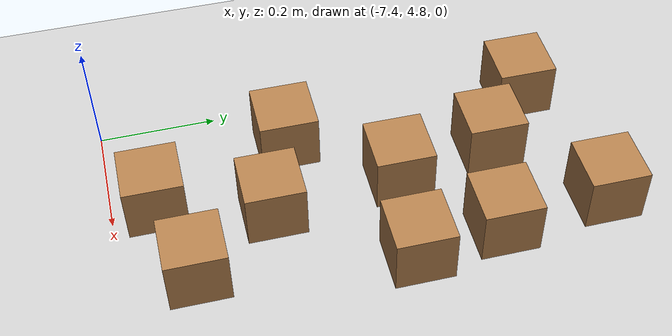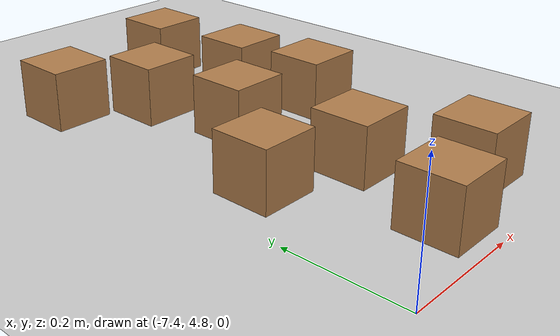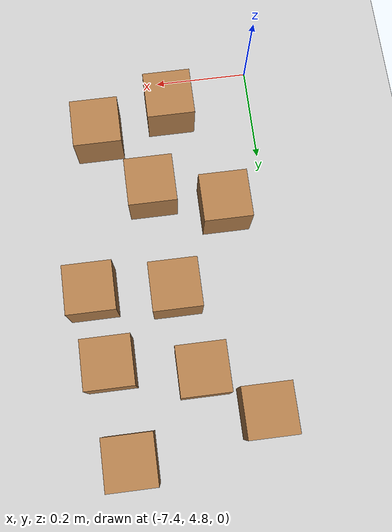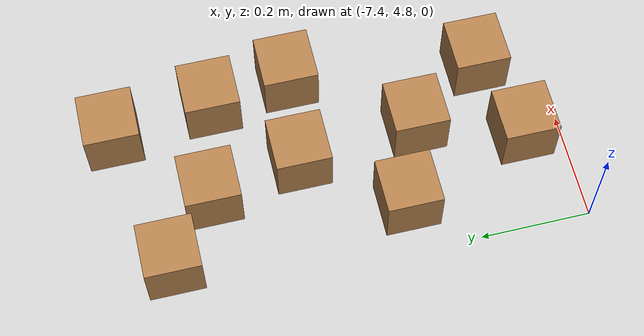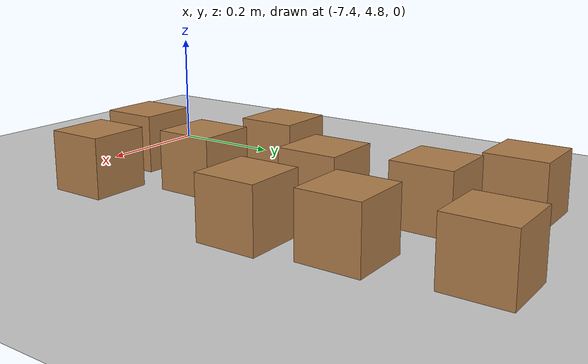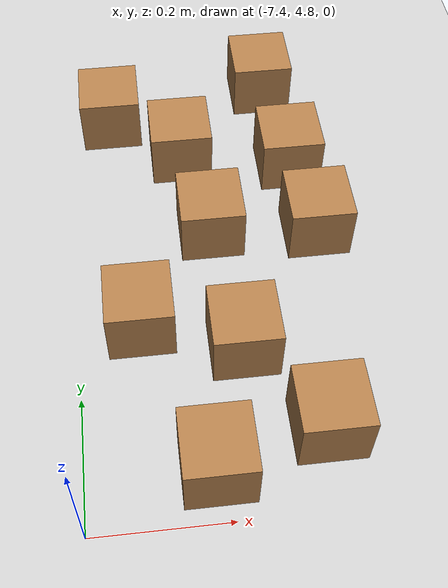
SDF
<sdf version="1.7">
 <world name="default">
  <model name="ground_plane">
   <static>1</static>
   <link name="link">
    <collision name="collision">
     <geometry><plane><normal>0 0 1</normal><size>100 100</size></plane></geometry>
     <surface>
      <contact><collide_bitmask>65535</collide_bitmask></contact>
      <friction><ode><mu>1.0</mu><mu2>1.0</mu2></ode></friction>
     </surface>
    </collision>
    <visual name="visual">
     <cast_shadows>0</cast_shadows>
     <geometry><plane><normal>0 0 1</normal><size>100 100</size></plane></geometry>
     <material>
      <script><uri>file://media/materials/scripts/gazebo.material</uri><name>Gazebo/Grey</name></script>
     </material>
    </visual>
   </link>
  </model>
  <model name="wood_cube_10cm_clone_2_clone_0">
   <link name="link">
    <pose>0 0 0.05 0 -0 0</pose>
    <inertial>
     <mass>0.5167</mass>
     <inertia>
      <ixx>0.000861167</ixx>
      <ixy>0</ixy>
      <ixz>0</ixz>
      <iyy>0.000861167</iyy>
      <iyz>0</iyz>
      <izz>0.000861167</izz>
     </inertia>
    </inertial>
    <collision name="collision">
     <geometry><box><size>0.1 0.1 0.1</size></box></geometry>
     <surface>
      <contact>
       <poissons_ratio>0.347</poissons_ratio>
       <elastic_modulus>8.8e+09</elastic_modulus>
       <ode><kp>100000</kp><kd>100</kd><max_vel>100</max_vel><min_depth>0.001</min_depth></ode>
      </contact>
      <friction>
       <torsional>
        <coefficient>1</coefficient>
        <use_patch_radius>0</use_patch_radius>
        <surface_radius>0.01</surface_radius>
       </torsional>
      </friction>
     </surface>
    </collision>
    <visual name="visual">
     <geometry><box><size>0.1 0.1 0.1</size></box></geometry>
     <material>
      <script><uri>file://media/materials/scripts/gazebo.material</uri><name>Gazebo/Wood</name></script>
     </material>
    </visual>
   </link>
   <pose>-7.059 4.91918 -0.001013 0 -0 0</pose>
  </model>
  <model name="wood_cube_10cm_clone_2_clone_4">
   <link name="link">
    <pose>0 0 0.05 0 -0 0</pose>
    <inertial>
     <mass>0.5167</mass>
     <inertia>
      <ixx>0.000861167</ixx>
      <ixy>0</ixy>
      <ixz>0</ixz>
      <iyy>0.000861167</iyy>
      <iyz>0</iyz>
      <izz>0.000861167</izz>
     </inertia>
    </inertial>
    <collision name="collision">
     <geometry><box><size>0.1 0.1 0.1</size></box></geometry>
     <surface>
      <contact>
       <poissons_ratio>0.347</poissons_ratio>
       <elastic_modulus>8.8e+09</elastic_modulus>
       <ode><kp>100000</kp><kd>100</kd><max_vel>100</max_vel><min_depth>0.001</min_depth></ode>
      </contact>
      <friction>
       <torsional>
        <coefficient>1</coefficient>
        <use_patch_radius>0</use_patch_radius>
        <surface_radius>0.01</surface_radius>
       </torsional>
      </friction>
     </surface>
    </collision>
    <visual name="visual">
     <geometry><box><size>0.1 0.1 0.1</size></box></geometry>
     <material>
      <script><uri>file://media/materials/scripts/gazebo.material</uri><name>Gazebo/Wood</name></script>
     </material>
    </visual>
   </link>
   <pose>-7.01286 5.26888 -0.001013 0 -0 0</pose>
  </model>
  <model name="wood_cube_10cm_clone_2_clone_5">
   <link name="link">
    <pose>0 0 0.05 0 -0 0</pose>
    <inertial>
     <mass>0.5167</mass>
     <inertia>
      <ixx>0.000861167</ixx>
      <ixy>0</ixy>
      <ixz>0</ixz>
      <iyy>0.000861167</iyy>
      <iyz>0</iyz>
      <izz>0.000861167</izz>
     </inertia>
    </inertial>
    <collision name="collision">
     <geometry><box><size>0.1 0.1 0.1</size></box></geometry>
     <surface>
      <contact>
       <poissons_ratio>0.347</poissons_ratio>
       <elastic_modulus>8.8e+09</elastic_modulus>
       <ode><kp>100000</kp><kd>100</kd><max_vel>100</max_vel><min_depth>0.001</min_depth></ode>
      </contact>
      <friction>
       <torsional>
        <coefficient>1</coefficient>
        <use_patch_radius>0</use_patch_radius>
        <surface_radius>0.01</surface_radius>
       </torsional>
      </friction>
     </surface>
    </collision>
    <visual name="visual">
     <geometry><box><size>0.1 0.1 0.1</size></box></geometry>
     <material>
      <script><uri>file://media/materials/scripts/gazebo.material</uri><name>Gazebo/Wood</name></script>
     </material>
    </visual>
   </link>
   <pose>-7.15845 5.06112 -0.001013 0 -0 0</pose>
  </model>
  <model name="wood_cube_10cm_clone_2_clone_6">
   <link name="link">
    <pose>0 0 0.05 0 -0 0</pose>
    <inertial>
     <mass>0.5167</mass>
     <inertia>
      <ixx>0.000861167</ixx>
      <ixy>0</ixy>
      <ixz>0</ixz>
      <iyy>0.000861167</iyy>
      <iyz>0</iyz>
      <izz>0.000861167</izz>
     </inertia>
    </inertial>
    <collision name="collision">
     <geometry><box><size>0.1 0.1 0.1</size></box></geometry>
     <surface>
      <contact>
       <poissons_ratio>0.347</poissons_ratio>
       <elastic_modulus>8.8e+09</elastic_modulus>
       <ode><kp>100000</kp><kd>100</kd><max_vel>100</max_vel><min_depth>0.001</min_depth></ode>
      </contact>
      <friction>
       <torsional>
        <coefficient>1</coefficient>
        <use_patch_radius>0</use_patch_radius>
        <surface_radius>0.01</surface_radius>
       </torsional>
      </friction>
     </surface>
    </collision>
    <visual name="visual">
     <geometry><box><size>0.1 0.1 0.1</size></box></geometry>
     <material>
      <script><uri>file://media/materials/scripts/gazebo.material</uri><name>Gazebo/Wood</name></script>
     </material>
    </visual>
   </link>
   <pose>-7.21871 4.87418 -0.001013 0 -0 0</pose>
  </model>
  <model name="wood_cube_10cm_clone_2_clone_8">
   <link name="link">
    <pose>0 0 0.05 0 -0 0</pose>
    <inertial>
     <mass>0.5167</mass>
     <inertia>
      <ixx>0.000861167</ixx>
      <ixy>0</ixy>
      <ixz>0</ixz>
      <iyy>0.000861167</iyy>
      <iyz>0</iyz>
      <izz>0.000861167</izz>
     </inertia>
    </inertial>
    <collision name="collision">
     <geometry><box><size>0.1 0.1 0.1</size></box></geometry>
     <surface>
      <contact>
       <poissons_ratio>0.347</poissons_ratio>
       <elastic_modulus>8.8e+09</elastic_modulus>
       <ode><kp>100000</kp><kd>100</kd><max_vel>100</max_vel><min_depth>0.001</min_depth></ode>
      </contact>
      <friction>
       <torsional>
        <coefficient>1</coefficient>
        <use_patch_radius>0</use_patch_radius>
        <surface_radius>0.01</surface_radius>
       </torsional>
      </friction>
     </surface>
    </collision>
    <visual name="visual">
     <geometry><box><size>0.1 0.1 0.1</size></box></geometry>
     <material>
      <script><uri>file://media/materials/scripts/gazebo.material</uri><name>Gazebo/Wood</name></script>
     </material>
    </visual>
   </link>
   <pose>-7.30695 5.11348 -0.001013 0 -0 0</pose>
  </model>
  <model name="wood_cube_10cm_clone_2_clone_9">
   <link name="link">
    <pose>0 0 0.05 0 -0 0</pose>
    <inertial>
     <mass>0.5167</mass>
     <inertia>
      <ixx>0.000861167</ixx>
      <ixy>0</ixy>
      <ixz>0</ixz>
      <iyy>0.000861167</iyy>
      <iyz>0</iyz>
      <izz>0.000861167</izz>
     </inertia>
    </inertial>
    <collision name="collision">
     <geometry><box><size>0.1 0.1 0.1</size></box></geometry>
     <surface>
      <contact>
       <poissons_ratio>0.347</poissons_ratio>
       <elastic_modulus>8.8e+09</elastic_modulus>
       <ode><kp>100000</kp><kd>100</kd><max_vel>100</max_vel><min_depth>0.001</min_depth></ode>
      </contact>
      <friction>
       <torsional>
        <coefficient>1</coefficient>
        <use_patch_radius>0</use_patch_radius>
        <surface_radius>0.01</surface_radius>
       </torsional>
      </friction>
     </surface>
    </collision>
    <visual name="visual">
     <geometry><box><size>0.1 0.1 0.1</size></box></geometry>
     <material>
      <script><uri>file://media/materials/scripts/gazebo.material</uri><name>Gazebo/Wood</name></script>
     </material>
    </visual>
   </link>
   <pose>-7.18268 5.28295 -0.001013 0 -0 0</pose>
  </model>
  <model name="wood_cube_10cm_clone_2_clone_11">
   <link name="link">
    <pose>0 0 0.05 0 -0 0</pose>
    <inertial>
     <mass>0.5167</mass>
     <inertia>
      <ixx>0.000861167</ixx>
      <ixy>0</ixy>
      <ixz>0</ixz>
      <iyy>0.000861167</iyy>
      <iyz>0</iyz>
      <izz>0.000861167</izz>
     </inertia>
    </inertial>
    <collision name="collision">
     <geometry><box><size>0.1 0.1 0.1</size></box></geometry>
     <surface>
      <contact>
       <poissons_ratio>0.347</poissons_ratio>
       <elastic_modulus>8.8e+09</elastic_modulus>
       <ode><kp>100000</kp><kd>100</kd><max_vel>100</max_vel><min_depth>0.001</min_depth></ode>
      </contact>
      <friction>
       <torsional>
        <coefficient>1</coefficient>
        <use_patch_radius>0</use_patch_radius>
        <surface_radius>0.01</surface_radius>
       </torsional>
      </friction>
     </surface>
    </collision>
    <visual name="visual">
     <geometry><box><size>0.1 0.1 0.1</size></box></geometry>
     <material>
      <script><uri>file://media/materials/scripts/gazebo.material</uri><name>Gazebo/Wood</name></script>
     </material>
    </visual>
   </link>
   <pose>-7.03434 5.41807 -0.001013 0 -0 0</pose>
  </model>
  <model name="wood_cube_10cm_clone_2_clone_12">
   <link name="link">
    <pose>0 0 0.05 0 -0 0</pose>
    <inertial>
     <mass>0.5167</mass>
     <inertia>
      <ixx>0.000861167</ixx>
      <ixy>0</ixy>
      <ixz>0</ixz>
      <iyy>0.000861167</iyy>
      <iyz>0</iyz>
      <izz>0.000861167</izz>
     </inertia>
    </inertial>
    <collision name="collision">
     <geometry><box><size>0.1 0.1 0.1</size></box></geometry>
     <surface>
      <contact>
       <poissons_ratio>0.347</poissons_ratio>
       <elastic_modulus>8.8e+09</elastic_modulus>
       <ode><kp>100000</kp><kd>100</kd><max_vel>100</max_vel><min_depth>0.001</min_depth></ode>
      </contact>
      <friction>
       <torsional>
        <coefficient>1</coefficient>
        <use_patch_radius>0</use_patch_radius>
        <surface_radius>0.01</surface_radius>
       </torsional>
      </friction>
     </surface>
    </collision>
    <visual name="visual">
     <geometry><box><size>0.1 0.1 0.1</size></box></geometry>
     <material>
      <script><uri>file://media/materials/scripts/gazebo.material</uri><name>Gazebo/Wood</name></script>
     </material>
    </visual>
   </link>
   <pose>-7.216 5.45282 -0.001013 0 -0 0</pose>
  </model>
  <model name="wood_cube_10cm_clone_2_clone_21">
   <link name="link">
    <pose>0 0 0.05 0 -0 0</pose>
    <inertial>
     <mass>0.5167</mass>
     <inertia>
      <ixx>0.000861167</ixx>
      <ixy>0</ixy>
      <ixz>0</ixz>
      <iyy>0.000861167</iyy>
      <iyz>0</iyz>
      <izz>0.000861167</izz>
     </inertia>
    </inertial>
    <collision name="collision">
     <geometry><box><size>0.1 0.1 0.1</size></box></geometry>
     <surface>
      <contact>
       <poissons_ratio>0.347</poissons_ratio>
       <elastic_modulus>8.8e+09</elastic_modulus>
       <ode><kp>100000</kp><kd>100</kd><max_vel>100</max_vel><min_depth>0.001</min_depth></ode>
      </contact>
      <friction>
       <torsional>
        <coefficient>1</coefficient>
        <use_patch_radius>0</use_patch_radius>
        <surface_radius>0.01</surface_radius>
       </torsional>
      </friction>
     </surface>
    </collision>
    <visual name="visual">
     <geometry><box><size>0.1 0.1 0.1</size></box></geometry>
     <material>
      <script><uri>file://media/materials/scripts/gazebo.material</uri><name>Gazebo/Wood</name></script>
     </material>
    </visual>
   </link>
   <pose>-7.3307 5.54451 -0.001013 0 -0 0</pose>
  </model>
  <model name="wood_cube_10cm_clone_2_clone_22">
   <link name="link">
    <pose>0 0 0.05 0 -0 0</pose>
    <inertial>
     <mass>0.5167</mass>
     <inertia>
      <ixx>0.000861167</ixx>
      <ixy>0</ixy>
      <ixz>0</ixz>
      <iyy>0.000861167</iyy>
      <iyz>0</iyz>
      <izz>0.000861167</izz>
     </inertia>
    </inertial>
    <collision name="collision">
     <geometry><box><size>0.1 0.1 0.1</size></box></geometry>
     <surface>
      <contact>
       <poissons_ratio>0.347</poissons_ratio>
       <elastic_modulus>8.8e+09</elastic_modulus>
       <ode><kp>100000</kp><kd>100</kd><max_vel>100</max_vel><min_depth>0.001</min_depth></ode>
      </contact>
      <friction>
       <torsional>
        <coefficient>1</coefficient>
        <use_patch_radius>0</use_patch_radius>
        <surface_radius>0.01</surface_radius>
       </torsional>
      </friction>
     </surface>
    </collision>
    <visual name="visual">
     <geometry><box><size>0.1 0.1 0.1</size></box></geometry>
     <material>
      <script><uri>file://media/materials/scripts/gazebo.material</uri><name>Gazebo/Wood</name></script>
     </material>
    </visual>
   </link>
   <pose>-7.05765 5.60498 -0.001013 0 -0 0</pose>
  </model>
 </world>
</sdf>
